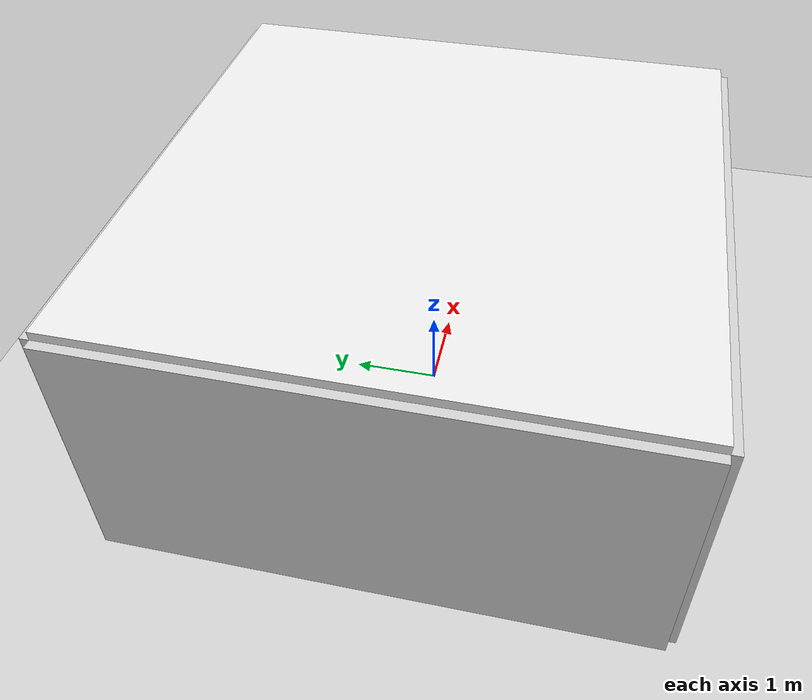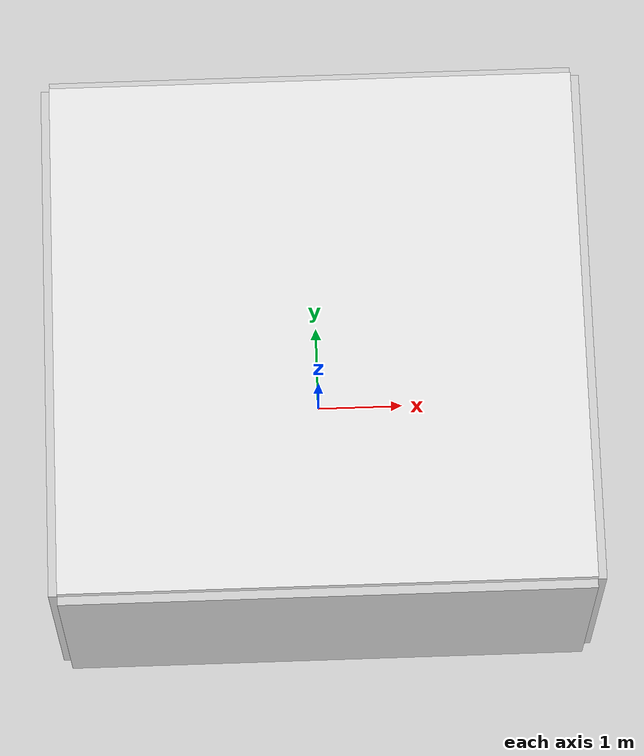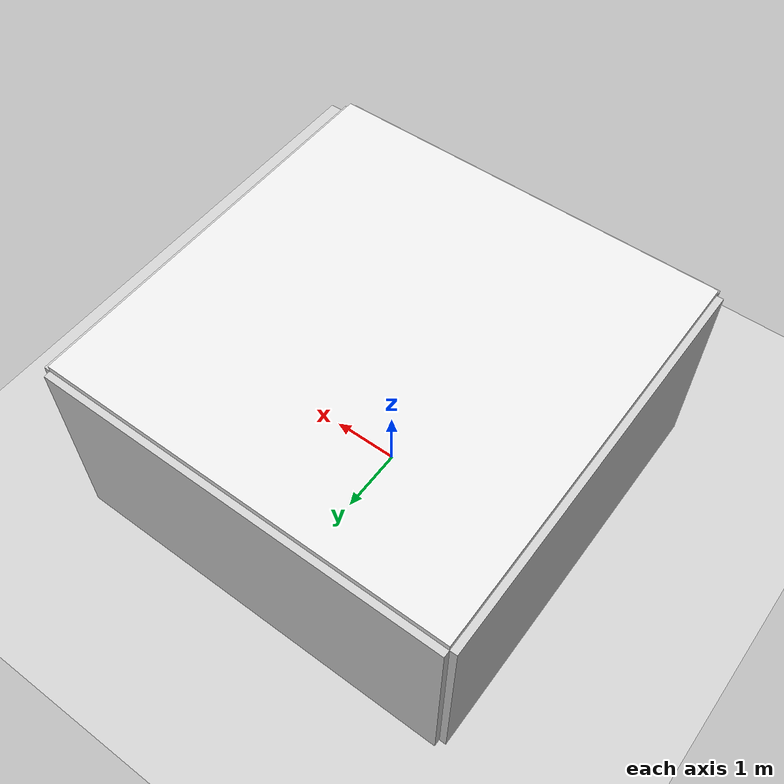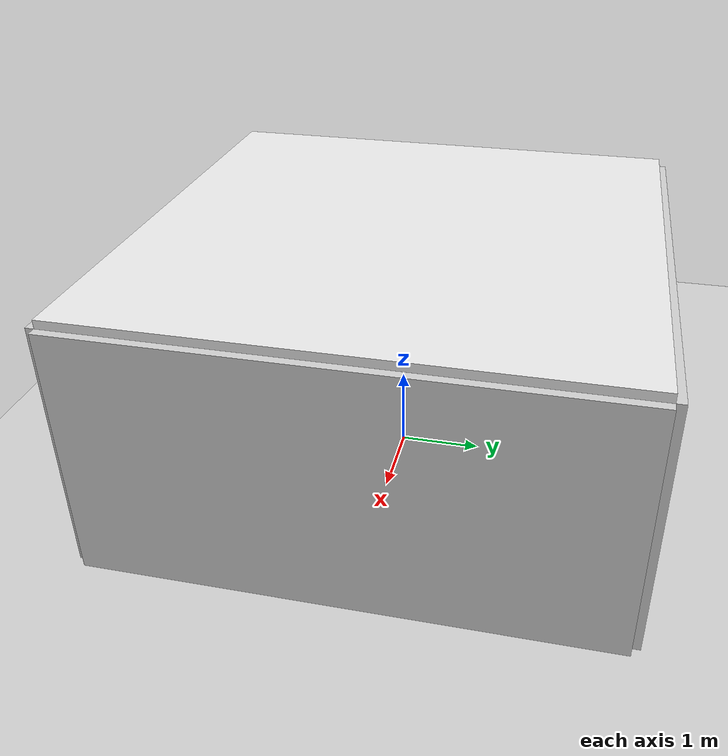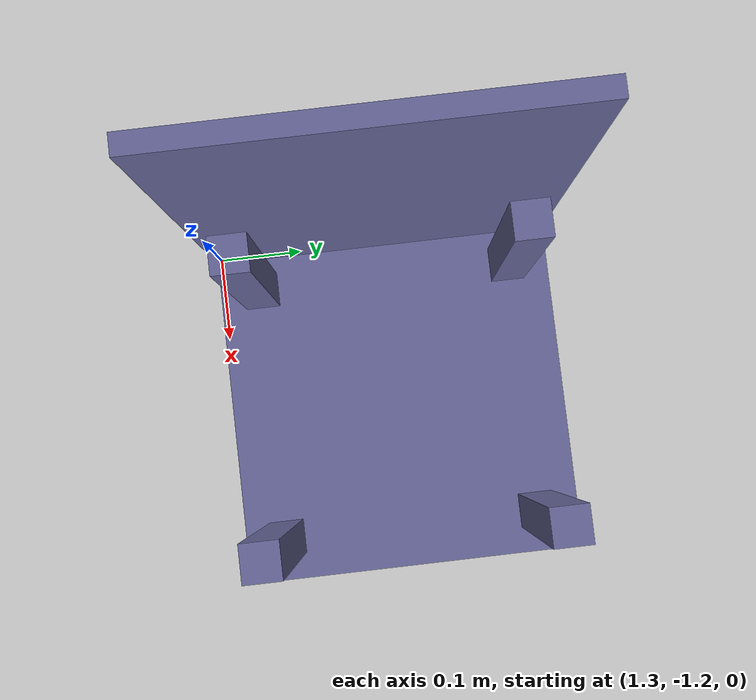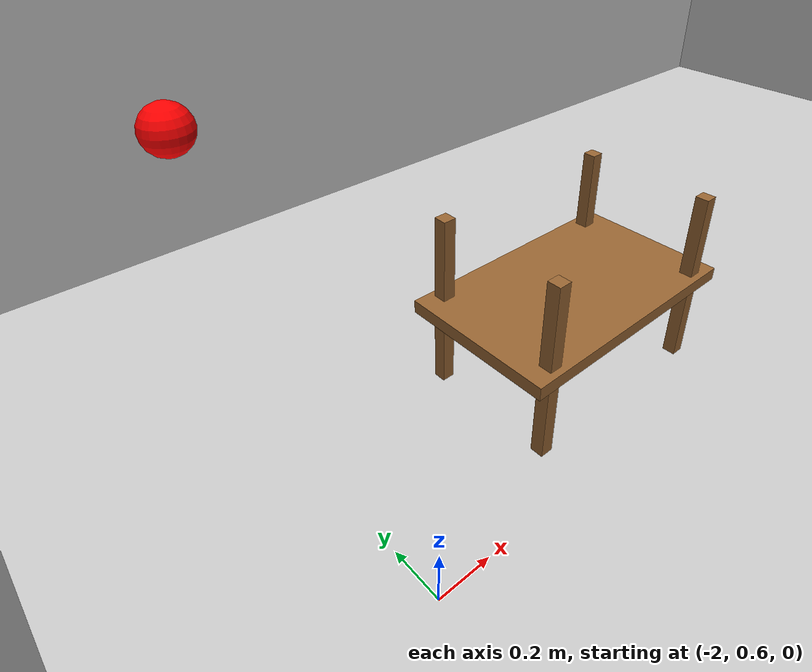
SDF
<?xml version="1.0" ?>
<sdf version="1.7">
  <world name="simple_room">
    <!-- Physics Engine Configuration -->
    <physics type="ode">
      <gravity>0 0 -9.8</gravity>
      <max_step_size>0.001</max_step_size>
      <real_time_factor>1.0</real_time_factor>
      <real_time_update_rate>1000</real_time_update_rate>
      <ode>
        <solver>
          <type>quick</type>
          <iters>100</iters>
          <sor>1.3</sor>
        </solver>
        <constraints>
          <cfm>0.00001</cfm>
          <erp>0.2</erp>
          <contact_max_correcting_vel>100</contact_max_correcting_vel>
          <contact_surface_layer>0.001</contact_surface_layer>
        </constraints>
      </ode>
    </physics>

    <!-- Include standard models -->
    <include>
      <uri>model://ground_plane</uri>
    </include>

    <include>
      <uri>model://sun</uri>
    </include>

    <!-- Room structure -->
    <!-- Floor is provided by ground_plane -->

    <!-- Walls -->
    <model name="wall_north">
      <pose>0 3 1.5 0 0 0</pose>
      <link name="link">
        <collision name="collision">
          <geometry>
            <box>
              <size>6 0.2 3</size>
            </box>
          </geometry>
        </collision>
        <visual name="visual">
          <geometry>
            <box>
              <size>6 0.2 3</size>
            </box>
          </geometry>
          <material>
            <ambient>0.5 0.5 0.5 1</ambient>
            <diffuse>0.8 0.8 0.8 1</diffuse>
            <specular>0.1 0.1 0.1 1</specular>
          </material>
        </visual>
        <self_collide>0</self_collide>
        <enable_wind>0</enable_wind>
        <kinematic>0</kinematic>
      </link>
    </model>

    <model name="wall_south">
      <pose>0 -3 1.5 0 0 0</pose>
      <link name="link">
        <collision name="collision">
          <geometry>
            <box>
              <size>6 0.2 3</size>
            </box>
          </geometry>
        </collision>
        <visual name="visual">
          <geometry>
            <box>
              <size>6 0.2 3</size>
            </box>
          </geometry>
          <material>
            <ambient>0.5 0.5 0.5 1</ambient>
            <diffuse>0.8 0.8 0.8 1</diffuse>
            <specular>0.1 0.1 0.1 1</specular>
          </material>
        </visual>
        <self_collide>0</self_collide>
        <enable_wind>0</enable_wind>
        <kinematic>0</kinematic>
      </link>
    </model>

    <model name="wall_east">
      <pose>3 0 1.5 0 0 0</pose>
      <link name="link">
        <collision name="collision">
          <geometry>
            <box>
              <size>0.2 6 3</size>
            </box>
          </geometry>
        </collision>
        <visual name="visual">
          <geometry>
            <box>
              <size>0.2 6 3</size>
            </box>
          </geometry>
          <material>
            <ambient>0.5 0.5 0.5 1</ambient>
            <diffuse>0.8 0.8 0.8 1</diffuse>
            <specular>0.1 0.1 0.1 1</specular>
          </material>
        </visual>
        <self_collide>0</self_collide>
        <enable_wind>0</enable_wind>
        <kinematic>0</kinematic>
      </link>
    </model>

    <model name="wall_west">
      <pose>-3 0 1.5 0 0 0</pose>
      <link name="link">
        <collision name="collision">
          <geometry>
            <box>
              <size>0.2 6 3</size>
            </box>
          </geometry>
        </collision>
        <visual name="visual">
          <geometry>
            <box>
              <size>0.2 6 3</size>
            </box>
          </geometry>
          <material>
            <ambient>0.5 0.5 0.5 1</ambient>
            <diffuse>0.8 0.8 0.8 1</diffuse>
            <specular>0.1 0.1 0.1 1</specular>
          </material>
        </visual>
        <self_collide>0</self_collide>
        <enable_wind>0</enable_wind>
        <kinematic>0</kinematic>
      </link>
    </model>

    <!-- Ceiling -->
    <model name="ceiling">
      <pose>0 0 3 0 0 0</pose>
      <link name="link">
        <collision name="collision">
          <geometry>
            <box>
              <size>6 6 0.2</size>
            </box>
          </geometry>
        </collision>
        <visual name="visual">
          <geometry>
            <box>
              <size>6 6 0.2</size>
            </box>
          </geometry>
          <material>
            <ambient>0.5 0.5 0.5 1</ambient>
            <diffuse>0.9 0.9 0.9 1</diffuse>
            <specular>0.1 0.1 0.1 1</specular>
          </material>
        </visual>
        <self_collide>0</self_collide>
        <enable_wind>0</enable_wind>
        <kinematic>0</kinematic>
      </link>
    </model>

    <!-- Furniture for physics testing -->
    <!-- Table -->
    <model name="table">
      <pose>-1 1 0.4 0 0 0</pose>
      <link name="table_top">
        <collision name="collision">
          <geometry>
            <box>
              <size>1.0 0.6 0.05</size>
            </box>
          </geometry>
        </collision>
        <visual name="visual">
          <geometry>
            <box>
              <size>1.0 0.6 0.05</size>
            </box>
          </geometry>
          <material>
            <ambient>0.3 0.2 0.1 1</ambient>
            <diffuse>0.6 0.4 0.2 1</diffuse>
            <specular>0.2 0.2 0.2 1</specular>
          </material>
        </visual>
        <inertial>
          <mass>10.0</mass>
          <inertia>
            <ixx>0.525</ixx>
            <ixy>0</ixy>
            <ixz>0</ixz>
            <iyy>0.908</iyy>
            <iyz>0</iyz>
            <izz>1.333</izz>
          </inertia>
        </inertial>
      </link>
      <link name="leg1">
        <pose>-0.4 -0.25 0 0 0 0</pose>
        <collision name="collision">
          <geometry>
            <box>
              <size>0.05 0.05 0.7</size>
            </box>
          </geometry>
        </collision>
        <visual name="visual">
          <geometry>
            <box>
              <size>0.05 0.05 0.7</size>
            </box>
          </geometry>
          <material>
            <ambient>0.3 0.2 0.1 1</ambient>
            <diffuse>0.6 0.4 0.2 1</diffuse>
            <specular>0.2 0.2 0.2 1</specular>
          </material>
        </visual>
        <inertial>
          <mass>2.0</mass>
          <inertia>
            <ixx>0.083</ixx>
            <ixy>0</ixy>
            <ixz>0</ixz>
            <iyy>0.083</iyy>
            <iyz>0</iyz>
            <izz>0.001</izz>
          </inertia>
        </inertial>
      </link>
      <link name="leg2">
        <pose>0.4 -0.25 0 0 0 0</pose>
        <collision name="collision">
          <geometry>
            <box>
              <size>0.05 0.05 0.7</size>
            </box>
          </geometry>
        </collision>
        <visual name="visual">
          <geometry>
            <box>
              <size>0.05 0.05 0.7</size>
            </box>
          </geometry>
          <material>
            <ambient>0.3 0.2 0.1 1</ambient>
            <diffuse>0.6 0.4 0.2 1</diffuse>
            <specular>0.2 0.2 0.2 1</specular>
          </material>
        </visual>
        <inertial>
          <mass>2.0</mass>
          <inertia>
            <ixx>0.083</ixx>
            <ixy>0</ixy>
            <ixz>0</ixz>
            <iyy>0.083</iyy>
            <iyz>0</iyz>
            <izz>0.001</izz>
          </inertia>
        </inertial>
      </link>
      <link name="leg3">
        <pose>-0.4 0.25 0 0 0 0</pose>
        <collision name="collision">
          <geometry>
            <box>
              <size>0.05 0.05 0.7</size>
            </box>
          </geometry>
        </collision>
        <visual name="visual">
          <geometry>
            <box>
              <size>0.05 0.05 0.7</size>
            </box>
          </geometry>
          <material>
            <ambient>0.3 0.2 0.1 1</ambient>
            <diffuse>0.6 0.4 0.2 1</diffuse>
            <specular>0.2 0.2 0.2 1</specular>
          </material>
        </visual>
        <inertial>
          <mass>2.0</mass>
          <inertia>
            <ixx>0.083</ixx>
            <ixy>0</ixy>
            <ixz>0</ixz>
            <iyy>0.083</iyy>
            <iyz>0</iyz>
            <izz>0.001</izz>
          </inertia>
        </inertial>
      </link>
      <link name="leg4">
        <pose>0.4 0.25 0 0 0 0</pose>
        <collision name="collision">
          <geometry>
            <box>
              <size>0.05 0.05 0.7</size>
            </box>
          </geometry>
        </collision>
        <visual name="visual">
          <geometry>
            <box>
              <size>0.05 0.05 0.7</size>
            </box>
          </geometry>
          <material>
            <ambient>0.3 0.2 0.1 1</ambient>
            <diffuse>0.6 0.4 0.2 1</diffuse>
            <specular>0.2 0.2 0.2 1</specular>
          </material>
        </visual>
        <inertial>
          <mass>2.0</mass>
          <inertia>
            <ixx>0.083</ixx>
            <ixy>0</ixy>
            <ixz>0</ixz>
            <iyy>0.083</iyy>
            <iyz>0</iyz>
            <izz>0.001</izz>
          </inertia>
        </inertial>
      </link>
      <joint name="top_to_leg1" type="fixed">
        <parent>table_top</parent>
        <child>leg1</child>
      </joint>
      <joint name="top_to_leg2" type="fixed">
        <parent>table_top</parent>
        <child>leg2</child>
      </joint>
      <joint name="top_to_leg3" type="fixed">
        <parent>table_top</parent>
        <child>leg3</child>
      </joint>
      <joint name="top_to_leg4" type="fixed">
        <parent>table_top</parent>
        <child>leg4</child>
      </joint>
    </model>

    <!-- Chair -->
    <model name="chair">
      <pose>1.5 -1 0 0 0 1.5708</pose>
      <link name="seat">
        <collision name="collision">
          <geometry>
            <box>
              <size>0.4 0.4 0.05</size>
            </box>
          </geometry>
        </collision>
        <visual name="visual">
          <geometry>
            <box>
              <size>0.4 0.4 0.05</size>
            </box>
          </geometry>
          <material>
            <ambient>0.2 0.2 0.3 1</ambient>
            <diffuse>0.4 0.4 0.6 1</diffuse>
            <specular>0.2 0.2 0.2 1</specular>
          </material>
        </visual>
        <inertial>
          <mass>3.0</mass>
          <inertia>
            <ixx>0.042</ixx>
            <ixy>0</ixy>
            <ixz>0</ixz>
            <iyy>0.042</iyy>
            <iyz>0</iyz>
            <izz>0.08</izz>
          </inertia>
        </inertial>
      </link>
      <link name="back">
        <pose>0 0.2 0.2 0 0 0</pose>
        <collision name="collision">
          <geometry>
            <box>
              <size>0.4 0.02 0.4</size>
            </box>
          </geometry>
        </collision>
        <visual name="visual">
          <geometry>
            <box>
              <size>0.4 0.02 0.4</size>
            </box>
          </geometry>
          <material>
            <ambient>0.2 0.2 0.3 1</ambient>
            <diffuse>0.4 0.4 0.6 1</diffuse>
            <specular>0.2 0.2 0.2 1</specular>
          </material>
        </visual>
        <inertial>
          <mass>2.0</mass>
          <inertia>
            <ixx>0.027</ixx>
            <ixy>0</ixy>
            <ixz>0</ixz>
            <iyy>0.033</iyy>
            <iyz>0</iyz>
            <izz>0.008</izz>
          </inertia>
        </inertial>
      </link>
      <link name="leg1">
        <pose>-0.15 -0.15 0 0 0 0</pose>
        <collision name="collision">
          <geometry>
            <box>
              <size>0.04 0.04 0.45</size>
            </box>
          </geometry>
        </collision>
        <visual name="visual">
          <geometry>
            <box>
              <size>0.04 0.04 0.45</size>
            </box>
          </geometry>
          <material>
            <ambient>0.2 0.2 0.3 1</ambient>
            <diffuse>0.4 0.4 0.6 1</diffuse>
            <specular>0.2 0.2 0.2 1</specular>
          </material>
        </visual>
        <inertial>
          <mass>1.0</mass>
          <inertia>
            <ixx>0.017</ixx>
            <ixy>0</ixy>
            <ixz>0</ixz>
            <iyy>0.017</iyy>
            <iyz>0</iyz>
            <izz>0.001</izz>
          </inertia>
        </inertial>
      </link>
      <link name="leg2">
        <pose>0.15 -0.15 0 0 0 0</pose>
        <collision name="collision">
          <geometry>
            <box>
              <size>0.04 0.04 0.45</size>
            </box>
          </geometry>
        </collision>
        <visual name="visual">
          <geometry>
            <box>
              <size>0.04 0.04 0.45</size>
            </box>
          </geometry>
          <material>
            <ambient>0.2 0.2 0.3 1</ambient>
            <diffuse>0.4 0.4 0.6 1</diffuse>
            <specular>0.2 0.2 0.2 1</specular>
          </material>
        </visual>
        <inertial>
          <mass>1.0</mass>
          <inertia>
            <ixx>0.017</ixx>
            <ixy>0</ixy>
            <ixz>0</ixz>
            <iyy>0.017</iyy>
            <iyz>0</iyz>
            <izz>0.001</izz>
          </inertia>
        </inertial>
      </link>
      <link name="leg3">
        <pose>-0.15 0.15 0 0 0 0</pose>
        <collision name="collision">
          <geometry>
            <box>
              <size>0.04 0.04 0.45</size>
            </box>
          </geometry>
        </collision>
        <visual name="visual">
          <geometry>
            <box>
              <size>0.04 0.04 0.45</size>
            </box>
          </geometry>
          <material>
            <ambient>0.2 0.2 0.3 1</ambient>
            <diffuse>0.4 0.4 0.6 1</diffuse>
            <specular>0.2 0.2 0.2 1</specular>
          </material>
        </visual>
        <inertial>
          <mass>1.0</mass>
          <inertia>
            <ixx>0.017</ixx>
            <ixy>0</ixy>
            <ixz>0</ixz>
            <iyy>0.017</iyy>
            <iyz>0</iyz>
            <izz>0.001</izz>
          </inertia>
        </inertial>
      </link>
      <link name="leg4">
        <pose>0.15 0.15 0 0 0 0</pose>
        <collision name="collision">
          <geometry>
            <box>
              <size>0.04 0.04 0.45</size>
            </box>
          </geometry>
        </collision>
        <visual name="visual">
          <geometry>
            <box>
              <size>0.04 0.04 0.45</size>
            </box>
          </geometry>
          <material>
            <ambient>0.2 0.2 0.3 1</ambient>
            <diffuse>0.4 0.4 0.6 1</diffuse>
            <specular>0.2 0.2 0.2 1</specular>
          </material>
        </visual>
        <inertial>
          <mass>1.0</mass>
          <inertia>
            <ixx>0.017</ixx>
            <ixy>0</ixy>
            <ixz>0</ixz>
            <iyy>0.017</iyy>
            <iyz>0</iyz>
            <izz>0.001</izz>
          </inertia>
        </inertial>
      </link>
      <joint name="seat_to_back" type="fixed">
        <parent>seat</parent>
        <child>back</child>
      </joint>
      <joint name="seat_to_leg1" type="fixed">
        <parent>seat</parent>
        <child>leg1</child>
      </joint>
      <joint name="seat_to_leg2" type="fixed">
        <parent>seat</parent>
        <child>leg2</child>
      </joint>
      <joint name="seat_to_leg3" type="fixed">
        <parent>seat</parent>
        <child>leg3</child>
      </joint>
      <joint name="seat_to_leg4" type="fixed">
        <parent>seat</parent>
        <child>leg4</child>
      </joint>
    </model>

    <!-- Test objects for physics simulation -->
    <!-- Ball -->
    <model name="test_ball">
      <pose>-2 2 1 0 0 0</pose>
      <link name="link">
        <collision name="collision">
          <geometry>
            <sphere>
              <radius>0.1</radius>
            </sphere>
          </geometry>
        </collision>
        <visual name="visual">
          <geometry>
            <sphere>
              <radius>0.1</radius>
            </sphere>
          </geometry>
          <material>
            <ambient>1 0 0 1</ambient>
            <diffuse>1 0 0 1</diffuse>
            <specular>0.5 0.5 0.5 1</specular>
          </material>
        </visual>
        <inertial>
          <mass>0.5</mass>
          <inertia>
            <ixx>0.002</ixx>
            <ixy>0</ixy>
            <ixz>0</ixz>
            <iyy>0.002</iyy>
            <iyz>0</iyz>
            <izz>0.002</izz>
          </inertia>
        </inertial>
      </link>
    </model>

    <!-- Box -->
    <model name="test_box">
      <pose>2 2 1 0 0 0</pose>
      <link name="link">
        <collision name="collision">
          <geometry>
            <box>
              <size>0.2 0.2 0.2</size>
            </box>
          </geometry>
        </collision>
        <visual name="visual">
          <geometry>
            <box>
              <size>0.2 0.2 0.2</size>
            </box>
          </geometry>
          <material>
            <ambient>0 0 1 1</ambient>
            <diffuse>0 0 1 1</diffuse>
            <specular>0.5 0.5 0.5 1</specular>
          </material>
        </visual>
        <inertial>
          <mass>0.8</mass>
          <inertia>
            <ixx>0.0053</ixx>
            <ixy>0</ixy>
            <ixz>0</ixz>
            <iyy>0.0053</iyy>
            <iyz>0</iyz>
            <izz>0.0053</izz>
          </inertia>
        </inertial>
      </link>
    </model>

    <!-- Cylinder -->
    <model name="test_cylinder">
      <pose>0 -2 1 0 0 0</pose>
      <link name="link">
        <collision name="collision">
          <geometry>
            <cylinder>
              <radius>0.08</radius>
              <length>0.2</length>
            </cylinder>
          </geometry>
        </collision>
        <visual name="visual">
          <geometry>
            <cylinder>
              <radius>0.08</radius>
              <length>0.2</length>
            </cylinder>
          </geometry>
          <material>
            <ambient>0 1 0 1</ambient>
            <diffuse>0 1 0 1</diffuse>
            <specular>0.5 0.5 0.5 1</specular>
          </material>
        </visual>
        <inertial>
          <mass>0.6</mass>
          <inertia>
            <ixx>0.0025</ixx>
            <ixy>0</ixy>
            <ixz>0</ixz>
            <iyy>0.0025</iyy>
            <iyz>0</iyz>
            <izz>0.0019</izz>
          </inertia>
        </inertial>
      </link>
    </model>
  </world>
</sdf>
